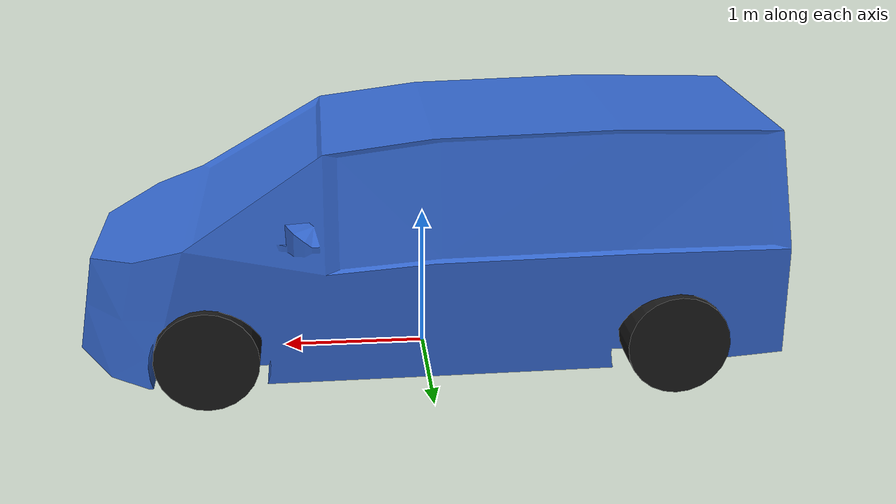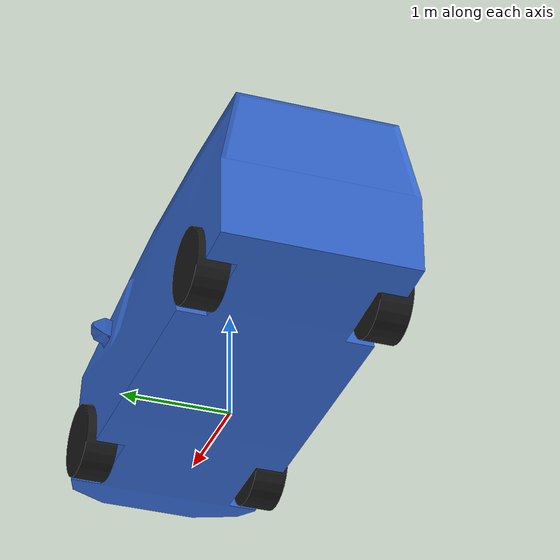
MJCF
<mujoco model="simple_car">
  <option gravity="0 0 -9.81" timestep="0.005"/>
  <compiler meshdir="meshes/" />
  <asset>
      <mesh name="edgar_body" file="edgar_body_low_2.obj" scale="1 1 1"/>
  </asset>
  <default>
    <geom contype="1" conaffinity="1" condim="3"/>
    <!-- Edgar steering range from vehicle_parameters_edgar.yaml -->
    <default class="steering">
      <joint type="hinge" axis="0 0 1" limited="true"
             frictionloss="1.0" damping="5.0" armature="0.1"
             range="-35 35"/>
    </default>
    <default class="throttle">
      <joint type="hinge" axis="0 1 0"
             frictionloss="1.0" damping="1.0" armature="1.0" limited="false"/>
    </default>
  </default>

  <worldbody>
    <!-- Edgar dimensions (m): length=4.973, width=1.941, height=2.320              -->
    <!-- Tire: Bridgestone 235/50R18 → radius = 9in + 235×0.5mm = 0.346 m          -->
    <!-- CG height = wheel_radius(0.346) + chassis_half_height(0.987) = 1.333 m    -->
    <!-- chassis_half_height = (vehicle_height - wheel_radius) / 2                  -->
    <!-- a=1.484 (CG to front axle), b=1.644 (CG to rear axle)                     -->
    <!-- T_f=1.645 m -> half-track = 0.8225 m                                      -->
    <body name="chassis" pos="0 0 1.333">
      <freejoint name="root"/>
      <inertial pos="0 0 -0.633" mass="2400"
            diaginertia="3500 13000 13600"/>
      <site name="imu" pos="0 0 0"/>
<geom name="chassis" type="box" size="2.4865 0.9705 0.987"
            rgba="0.2 0.4 0.8 0"/>

      <geom name="chassis_visual" type="mesh"  mesh="edgar_body"
        pos="-1.6 0.000 -1.4"
        contype="0" conaffinity="0" rgba="0.2 0.4 0.8 1"/>

      <!-- Front-left wheel -->
      <body name="wheel_fl" pos="1.484 0.8225 -0.987">
        <joint class="steering" name="wheel_fl_steering"/>
        <joint class="throttle" name="fl_spin"/>
        <geom type="cylinder" size="0.346 0.15" euler="90 0 0" mass="30"
              friction="1.5 0.05 0.05" rgba="0.1 0.1 0.1 1"/>
      </body>

      <!-- Front-right wheel -->
      <body name="wheel_fr" pos="1.484 -0.8225 -0.987">
        <joint class="steering" name="wheel_fr_steering"/>
        <joint class="throttle" name="fr_spin"/>
        <geom type="cylinder" size="0.346 0.15" euler="90 0 0" mass="30"
              friction="1.5 0.05 0.05" rgba="0.1 0.1 0.1 1"/>
      </body>

      <!-- Rear-left wheel -->
      <body name="wheel_rl" pos="-1.644 0.8225 -0.987">
        <joint class="throttle" name="rl_spin"/>
        <geom type="cylinder" size="0.346 0.15" euler="90 0 0" mass="30"
              friction="1.5 0.05 0.05" rgba="0.1 0.1 0.1 1"/>
      </body>

      <!-- Rear-right wheel -->
      <body name="wheel_rr" pos="-1.644 -0.8225 -0.987">
        <joint class="throttle" name="rr_spin"/>
        <geom type="cylinder" size="0.346 0.15" euler="90 0 0" mass="30"
              friction="1.5 0.05 0.05" rgba="0.1 0.1 0.1 1"/>
      </body>
    </body>
  </worldbody>

  <actuator>
    <position name="steering" tendon="steering_link" kp="10000" ctrlrange="-1.2217 1.2217"/>
    <motor name="throttle" tendon="throttle_all" gear="2520"
           ctrllimited="true" ctrlrange="0 1"/>
    <damper name="brake" tendon="throttle_all" kv="95" ctrlrange="0 1"/>
  </actuator>

  <equality>
  <joint joint1="wheel_fl_steering" joint2="wheel_fr_steering"
         polycoef="0 1 0 0" solimp="0.99 0.99 0.01" solref="0.001 1"/>
</equality>

  <tendon>
    <fixed name="steering_link">
      <joint joint="wheel_fl_steering" coef="-1.0"/>
      <joint joint="wheel_fr_steering" coef="-1.0"/>
    </fixed>
    <fixed name="throttle_all">
      <joint joint="fl_spin" coef="0.25"/>
      <joint joint="fr_spin" coef="0.25"/>
      <joint joint="rl_spin" coef="0.25"/>
      <joint joint="rr_spin" coef="0.25"/>
    </fixed>
  </tendon>

  <sensor>
    <gyro          name="gyro"          site="imu"/>
    <velocimeter   name="velocimeter"   site="imu"/>
    <accelerometer name="accelerometer" site="imu"/>
  </sensor>
</mujoco>
